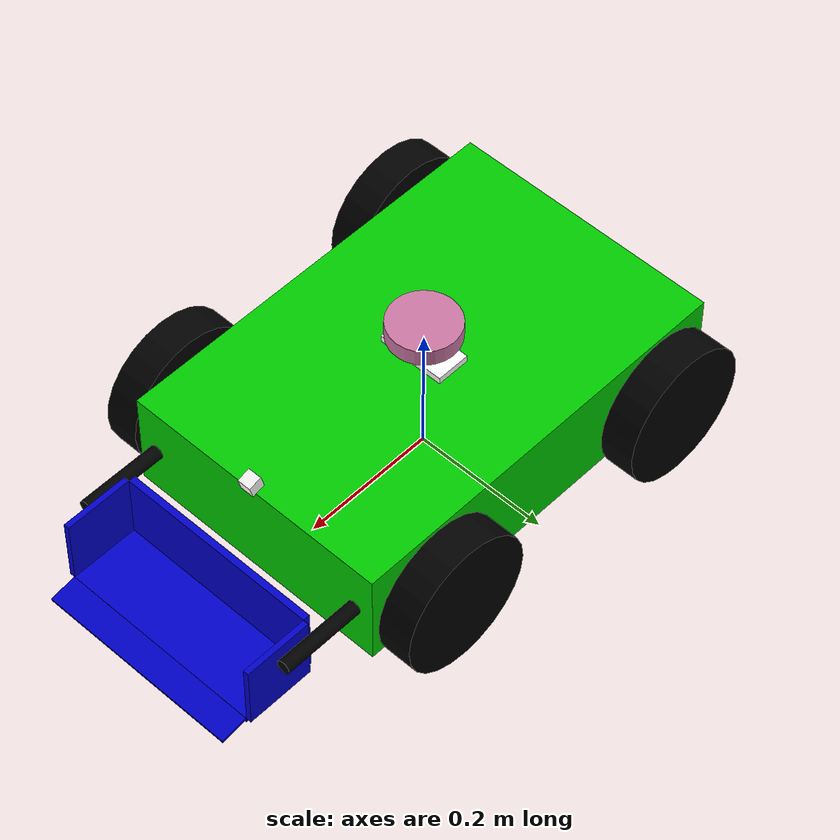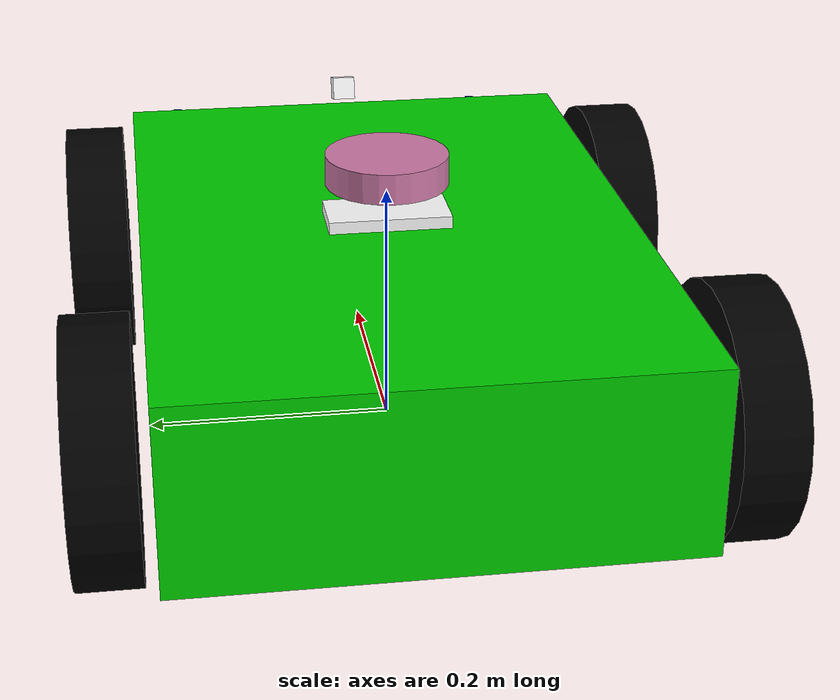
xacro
<?xml version="1.0"?>
<robot name="autonomous_sphere_collector" xmlns:xacro="https://ros.org/wiki/xacro">

    <xacro:include filename="$(find autonomous_sphere_collector)/urdf/sensors.gazebo"/>
    <xacro:include filename="$(find autonomous_sphere_collector)/urdf/materials.xacro"/>
    <xacro:include filename="$(find autonomous_sphere_collector)/urdf/scoop_mechanism.xacro"/>

    <link name="base_footprint"/>

    <joint name="base_footprint_joint" type="fixed">
        <origin xyz="0 0 0.1" rpy="0 0 0"/>
        <parent link="base_footprint"/>
        <child link="base_link"/>
    </joint>

    <link name="base_link">
        <pose>0 0 0.1 0 0 0</pose>
        <inertial>
            <mass value="15.0"/>
            <origin xyz="0.0 0 0" rpy="0 0 0"/>
            <inertia ixx="0.0625" ixy="0" ixz="0" iyy="0.2125" iyz="0" izz="0.25"/>
        </inertial>
        <collision name="collision">
            <origin xyz="0 0 0" rpy="0 0 0"/>
            <geometry>
                <box size="0.6 0.4 0.15"/>
            </geometry>
        </collision>
        <visual name="base_link_visual">
            <origin xyz="0 0 0" rpy="0 0 0"/>
            <geometry>
                <box size="0.6 0.4 0.15"/>
            </geometry>
            <material name="green"/>
        </visual>
    </link>

    <xacro:macro name="wheel" params="prefix x_reflect y_reflect">
        <joint type="continuous" name="${prefix}_wheel_joint">
            <origin xyz="${x_reflect * 0.2} ${y_reflect * 0.235} -0.01" rpy="0 0 0"/>
            <child link="${prefix}_wheel"/>
            <parent link="base_link"/>
            <axis xyz="0 1 0" rpy="0 0 0"/>
            <limit effort="400" velocity="50"/>
            <dynamics damping="0.0" friction="0.0"/>
        </joint>

        <link name="${prefix}_wheel">
            <inertial>
                <mass value="5.0"/>
                <origin xyz="0 0 0" rpy="0 1.5707 1.5707"/>
                <inertia ixx="0.014" ixy="0" ixz="0" iyy="0.014" iyz="0" izz="0.025"/>
            </inertial>
            <collision>
                <origin xyz="0 0 0" rpy="0 1.5707 1.5707"/>
                <geometry>
                    <cylinder radius="0.1" length="0.05"/>
                </geometry>
            </collision>
            <visual name="${prefix}_wheel_visual">
                <origin xyz="0 0 0" rpy="0 1.5707 1.5707"/>
                <geometry>
                    <cylinder radius="0.1" length="0.05"/>
                </geometry>
                <material name="black"/>
            </visual>
        </link>

        <gazebo reference="${prefix}_wheel">
            <mu1>1.0</mu1>
            <mu2>1.0</mu2>
            <kp>1000000.0</kp>
            <kd>100.0</kd>
            <minDepth>0.0001</minDepth>
            <maxVel>1.0</maxVel>
        </gazebo>
    </xacro:macro>

    <xacro:wheel prefix="front_left"   x_reflect="1"  y_reflect="1" />
    <xacro:wheel prefix="front_right"  x_reflect="1"  y_reflect="-1" />
    <xacro:wheel prefix="rear_left"    x_reflect="-1" y_reflect="1" />
    <xacro:wheel prefix="rear_right"   x_reflect="-1" y_reflect="-1" />

    <gazebo reference="base_link">
        <mu1>1.0</mu1>
        <mu2>1.0</mu2>
    </gazebo>

    <joint name="imu_joint" type="fixed">
        <origin xyz="0 0 0.08" rpy="0 0 0"/>
        <parent link="base_link"/>
        <child link="imu_link"/>
    </joint>

    <link name="imu_link">
        <inertial>
            <mass value="1e-5"/>
            <origin xyz="0 0 0" rpy="0 0 0"/>
            <inertia ixx="1e-6" ixy="0" ixz="0" iyy="1e-6" iyz="0.0" izz="1e-6"/>
        </inertial>
        <collision name="collision">
            <origin xyz="0 0 0" rpy="0 0 0"/>
            <geometry>
                <box size="0.05 0.1 0.01"/>
            </geometry>
        </collision>
        <visual name="visual">
            <origin xyz="0 0 0" rpy="0 0 0"/>
            <geometry>
                <box size="0.05 0.1 0.01"/>
            </geometry>
            <material name="white"/>
        </visual>
    </link>

    <joint type="fixed" name="scan_joint">
        <origin xyz="0.0 0 0.12" rpy="0 0 0"/>
        <child link="scan_link"/>
        <parent link="base_link"/>
        <axis xyz="0 1 0" rpy="0 0 0"/>
    </joint>

    <link name="scan_link">
        <inertial>
            <mass value="1e-5"/>
            <origin xyz="0 0 0" rpy="0 0 0"/>
            <inertia ixx="1e-6" ixy="0" ixz="0" iyy="1e-6" iyz="0" izz="1e-6"/>
        </inertial>
        <collision name="collision">
            <origin xyz="0 0 0" rpy="0 0 0"/>
            <geometry>
                <cylinder radius="0.05" length="0.025"/>
            </geometry>
        </collision>
        <visual name="visual">
            <origin xyz="0 0 0" rpy="0 0 0"/>
            <geometry>
                <cylinder radius="0.05" length="0.025"/>
            </geometry>
        </visual>
    </link>

    <gazebo reference="scan_link">
        <selfCollide>false</selfCollide>
        <mu1 value="0.05"/>
        <mu2 value="0.05"/>
    </gazebo>

    <joint type="fixed" name="camera_joint">
        <origin xyz="0.3 0 0.09" rpy="0 0 0"/>
        <child link="camera_link"/>
        <parent link="base_link"/>
    </joint>

    <link name="camera_link">
        <inertial>
            <mass value="1e-5"/>
            <origin xyz="0 0 0" rpy="0 0 0"/>
            <inertia ixx="1e-6" ixy="0" ixz="0" iyy="1e-6" iyz="0.0" izz="1e-6"/>
        </inertial>
        <collision name="collision">
            <origin xyz="0 0 0" rpy="0 0 0"/>
            <geometry>
                <box size="0.02 0.02 0.02"/>
            </geometry>
        </collision>
        <visual name="visual">
            <origin xyz="0 0 0" rpy="0 0.261799 0"/>
            <geometry>
                <box size="0.02 0.02 0.02"/>
            </geometry>
            <material name="white"/>
        </visual>
    </link>

</robot>

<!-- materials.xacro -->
<robot xmlns:xacro="http://ros.org/wiki/xacro">
    <material name="black">
        <color rgba="0.0 0.0 0.0 1.0"/>
    </material>
    <material name="white">
        <color rgba="1.0 1.0 1.0 1.0"/>
    </material>
    <material name="red">
        <color rgba="0.8 0.0 0.0 1.0"/>
    </material>
    <material name="blue">
        <color rgba="0.0 0.0 0.8 1.0"/>
    </material>
    <material name="green">
        <color rgba="0.0 0.8 0.0 1.0"/>
    </material>
    <material name="grey">
        <color rgba="0.5 0.5 0.5 1.0"/>
    </material>
</robot>

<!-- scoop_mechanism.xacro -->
<robot xmlns:xacro="https://ros.org/wiki/xacro">

    <xacro:property name="pivot_rod_mass" value="0.5" />
    <xacro:property name="pivot_rod_radius" value="0.010" />
    <xacro:property name="pivot_rod_length_x" value="0.120" />

    <xacro:property name="scoop_depth_x" value="0.01" />
    <xacro:property name="scoop_width_y" value="0.3" />
    <xacro:property name="scoop_height_z" value="0.1" />

    <xacro:property name="wall_thickness_z" value="0.008" />
    <xacro:property name="scoop_lrw_width_y" value="${wall_thickness_z}"/>
    <xacro:property name="scoop_ramp_length_z" value="0.004" />

    <xacro:property name="scoop_b_depth_x" value="0.1" />
    <xacro:property name="scoop_lrw_depth_x" value="0.1" />
    <xacro:property name="scoop_lrw_height_z" value="0.1" />
    <xacro:property name="scoop_ramp_length_x" value="0.04" />

    <xacro:property name="scoop_mass" value="1.0" />

    <joint name="pivot_rod_one_link_joint" type="fixed">
        <parent link="base_link"/>
        <child link="pivot_rod_one_link"/>
        <origin xyz="0.36 0.17 0" rpy="0 0 0"/>
    </joint>

    <link name="pivot_rod_one_link">
        <visual>
            <origin xyz="0 0 0" rpy="0 1.5708 0"/> <geometry>
                <cylinder radius="${pivot_rod_radius}" length="${pivot_rod_length_x}"/>
            </geometry>
            <material name="black"/>
        </visual>
        <collision>
            <origin xyz="0 0 0" rpy="0 1.5708 0"/>
            <geometry>
                <cylinder radius="${pivot_rod_radius}" length="${pivot_rod_length_x}"/>
            </geometry>
        </collision>
        <inertial>
            <mass value="${pivot_rod_mass}"/>
            <origin xyz="0 0 0" rpy="0 0 0"/>
            <inertia ixx="0.000025" ixy="0" ixz="0" iyy="0.0006125" iyz="0.0" izz="0.0006125"/>
        </inertial>
    </link>

    <joint name="pivot_rod_two_link_joint" type="fixed">
        <parent link="base_link"/>
        <child link="pivot_rod_two_link"/>
        <origin xyz="0.36 -0.17 0" rpy="0 0 0"/>
    </joint>

    <link name="pivot_rod_two_link">
        <visual>
            <origin xyz="0 0 0" rpy="0 1.5708 0"/>
            <geometry>
                <cylinder radius="${pivot_rod_radius}" length="${pivot_rod_length_x}"/>
            </geometry>
            <material name="black"/>
        </visual>
        <collision>
            <origin xyz="0 0 0" rpy="0 1.5708 0"/>
            <geometry>
                <cylinder radius="${pivot_rod_radius}" length="${pivot_rod_length_x}"/>
            </geometry>
        </collision>
        <inertial>
            <mass value="${pivot_rod_mass}"/>
            <origin xyz="0 0 0" rpy="0 0 0"/>
            <inertia ixx="0.000025" ixy="0" ixz="0" iyy="0.0006125" iyz="0.0" izz="0.0006125"/>
        </inertial>
    </link>

    <joint name="scoop_pivot_joint" type="revolute">
        <parent link="base_link"/>
        <child link="scoop_link"/>
        <origin xyz="0.36 0 -0.03" rpy="0 0 0"/>
        <axis xyz="0 1 0"/> <child_link_offset xyz="-0.005 0 -0.05"/>
        <limit effort="100.0" velocity="1.0" lower="-1.5708" upper="0.610865"/>
    </joint>

    <link name="scoop_link">
        <inertial>
            <mass value="${scoop_mass}"/>
            <origin xyz="0 0 0" rpy=" 0 0 0"/>
            <inertia ixx="0.05" ixy="0" ixz="0" iyy="0.05" iyz="0" izz="0.05"/>
        </inertial>
        <collision name="scoop_collision">
            <origin xyz="0 0 0" rpy=" 0 0 0"/>
            <geometry>
                <box size="${scoop_depth_x} ${scoop_width_y} ${scoop_height_z}"/>
            </geometry>
        </collision>
        <visual name="scoop_visual">
            <origin xyz="0 0 0" rpy=" 0 0 0"/>
            <geometry>
                <box size="${scoop_depth_x} ${scoop_width_y} ${scoop_height_z}"/>
            </geometry>
            <material name="blue"/>
        </visual>
    </link>

    <joint name="scoop_bottom_joint" type="fixed">
        <parent link="scoop_link"/>
        <child link="scoop_bottom_wall_link"/>
        <origin xyz="0.055 0 -0.054" rpy="0 0 0"/>
    </joint>

    <link name="scoop_bottom_wall_link">
        <inertial>
            <mass value="0.5"/>
            <origin xyz="0 0 0" rpy="0 0 0"/>
            <inertia ixx="0.001" ixy="0" ixz="0" iyy="0.001" izz="0.001" iyz="0.0"/>
        </inertial>
        <collision>
            <geometry>
                <box size="${scoop_b_depth_x} ${scoop_width_y} ${wall_thickness_z}"/>
            </geometry>
        </collision>
        <visual>
            <geometry>
                <box size="${scoop_b_depth_x} ${scoop_width_y} ${wall_thickness_z}"/>
            </geometry>
            <material name="blue"/>
        </visual>
    </link>

    <joint name="scoop_ramp_joint" type="fixed">
        <parent link="scoop_bottom_wall_link"/>
        <child link="scoop_ramp_link"/>
        <origin xyz="0.07 0 0" rpy="0 0.1745 0"/> </joint>

    <link name="scoop_ramp_link">
        <inertial>
            <mass value="0.1"/>
            <origin xyz="0 0 0" rpy="0 0 0"/>
            <inertia ixx="0.0001" ixy="0" ixz="0" iyy="0.0001" izz="0.0001" iyz="0.0"/>
        </inertial>
        <collision>
            <geometry>
                <box size="${scoop_ramp_length_x} ${scoop_width_y} ${scoop_ramp_length_z}"/>
            </geometry>
        </collision>
        <visual>
            <geometry>
                <box size="${scoop_ramp_length_x} ${scoop_width_y} ${scoop_ramp_length_z}"/>
            </geometry>
            <material name="blue"/>
        </visual>
    </link>

    <joint name="scoop_left_joint" type="fixed">
        <parent link="scoop_link"/>
        <child link="scoop_left_wall_link"/>
        <origin xyz="0.055 0.154 0" rpy="0 0 0"/>
    </joint>

    <link name="scoop_left_wall_link">
        <inertial>
            <mass value="0.5"/>
            <origin xyz="0 0 0" rpy="0 0 0"/>
            <inertia ixx="0.001" ixy="0" ixz="0" iyy="0.001" izz="0.001" iyz="0.0"/>
        </inertial>
        <collision>
            <geometry>
                <box size="${scoop_lrw_depth_x} ${scoop_lrw_width_y} ${scoop_lrw_height_z}"/>
            </geometry>
        </collision>
        <visual>
            <geometry>
                <box size="${scoop_lrw_depth_x} ${scoop_lrw_width_y} ${scoop_lrw_height_z}"/>
            </geometry>
            <material name="blue"/>
        </visual>
    </link>

    <joint name="scoop_right_joint" type="fixed">
        <parent link="scoop_link"/>
        <child link="scoop_right_wall_link"/>
        <origin xyz="0.055 -0.154 0" rpy="0 0 0"/>
    </joint>

    <link name="scoop_right_wall_link">
        <inertial>
            <mass value="0.5"/>
            <origin xyz="0 0 0" rpy="0 0 0"/>
            <inertia ixx="0.001" ixy="0" ixz="0" iyy="0.001" izz="0.001" iyz="0.0"/>
        </inertial>
        <collision>
            <geometry>
                <box size="${scoop_lrw_depth_x} ${scoop_lrw_width_y} ${scoop_lrw_height_z}"/>
            </geometry>
        </collision>
        <visual>
            <geometry>
                <box size="${scoop_lrw_depth_x} ${scoop_lrw_width_y} ${scoop_lrw_height_z}"/>
            </geometry>
            <material name="blue"/>
        </visual>
    </link>

</robot>
